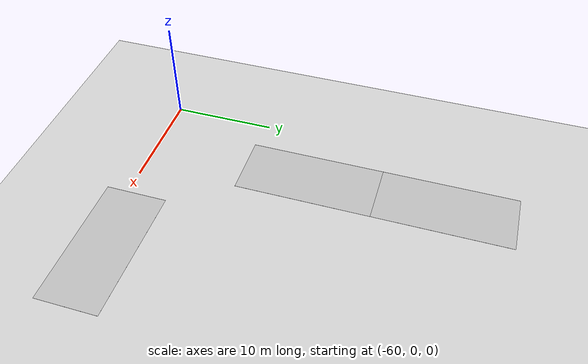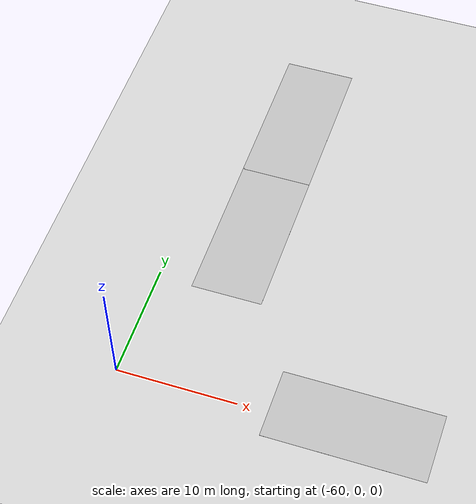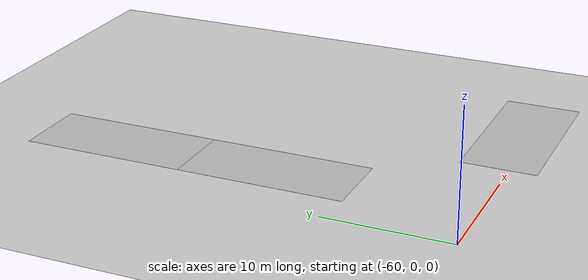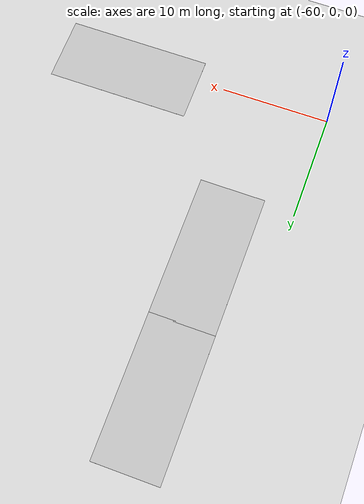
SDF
<sdf version="1.6">
 <world name="default">
  <model name="ground_plane">
   <pose>0 0 -1 0 -0 0</pose>
   <static>1</static>
   <link name="link">
    <collision name="collision">
     <geometry><plane><normal>0 0 1</normal><size>100 100</size></plane></geometry>
     <surface><friction><ode><mu>100</mu><mu2>50</mu2></ode></friction></surface>
    </collision>
    <visual name="visual">
     <cast_shadows>0</cast_shadows>
     <geometry><plane><normal>0 0 1</normal><size>100 100</size></plane></geometry>
     <material>
      <script><uri>file://media/materials/scripts/gazebo.material</uri><name>Gazebo/Grey</name></script>
     </material>
    </visual>
   </link>
  </model>
  <model name="road_4_clone_clone_1_clone_1">
   <link name="body">
    <visual name="visual">
     <geometry><mesh><uri>file://road.dae</uri></mesh></geometry>
     <material><shader type="pixel"/></material>
    </visual>
   </link>
   <static>1</static>
   <pose>-40.8713 0.896025 0 0 -0 1.57</pose>
  </model>
  <model name="road_4_clone_6">
   <link name="body">
    <visual name="visual">
     <geometry><mesh><uri>file://road.dae</uri></mesh></geometry>
     <material><shader type="pixel"/></material>
    </visual>
   </link>
   <static>1</static>
   <pose>-54.1237 16.0365 0 0 -0 0</pose>
  </model>
  <model name="road_4_clone_7">
   <link name="body">
    <visual name="visual">
     <geometry><mesh><uri>file://road.dae</uri></mesh></geometry>
     <material><shader type="pixel"/></material>
    </visual>
   </link>
   <static>1</static>
   <pose>-54.1267 29.1356 0 0 -0 0</pose>
  </model>
 </world>
</sdf>
